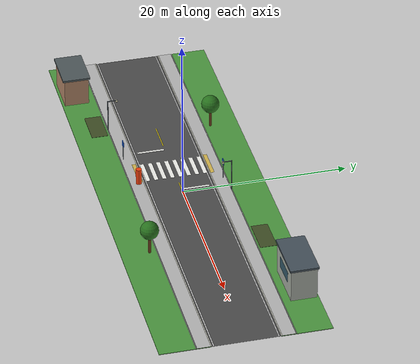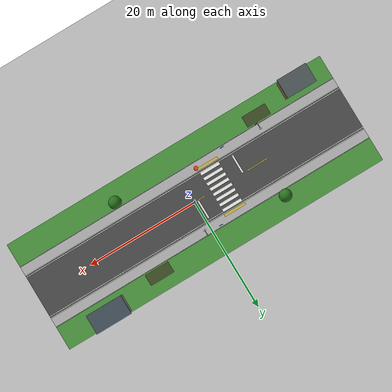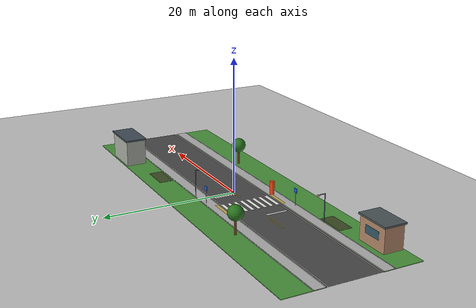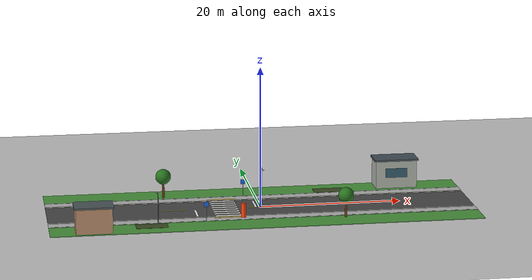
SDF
<?xml version="1.0" ?>
<sdf version="1.6">
  <world name="safe_drive_minimal_road">
    <plugin name="safe_drive_ground_truth" filename="libgazebo_ros_state.so">
      <ros>
        <namespace>/safe_drive/gazebo</namespace>
      </ros>
      <update_rate>20.0</update_rate>
    </plugin>
    <physics name="ode" type="ode">
      <max_step_size>0.001</max_step_size>
      <real_time_factor>1.0</real_time_factor>
      <real_time_update_rate>1000</real_time_update_rate>
    </physics>

    <gravity>0 0 -9.81</gravity>
    <magnetic_field>6e-6 2.3e-5 -4.2e-5</magnetic_field>
    <atmosphere type="adiabatic"/>

    <!-- Catch vehicles that leave the finite test road while a controller is
         being developed. The road surface remains the active driving plane. -->
    <include>
      <uri>model://ground_plane</uri>
      <pose>0 0 -0.1 0 0 0</pose>
    </include>

    <scene>
      <ambient>0.45 0.45 0.45 1</ambient>
      <background>0.70 0.85 1.0 1</background>
      <shadows>true</shadows>
    </scene>

    <gui>
      <camera name="user_camera">
        <track_visual>
          <name>safe_drive_ego</name>
          <static>true</static>
          <use_model_frame>true</use_model_frame>
          <xyz>-7 0 4</xyz>
        </track_visual>
      </camera>
    </gui>

    <light name="sun" type="directional">
      <cast_shadows>true</cast_shadows>
      <pose>0 0 10 0 0 0</pose>
      <diffuse>0.8 0.8 0.8 1</diffuse>
      <specular>0.2 0.2 0.2 1</specular>
      <attenuation>
        <range>1000</range>
        <constant>0.9</constant>
        <linear>0.01</linear>
        <quadratic>0.001</quadratic>
      </attenuation>
      <direction>-0.5 0.1 -0.9</direction>
    </light>

    <model name="road">
      <static>true</static>
      <link name="road_link">
        <collision name="collision">
          <pose>0 0 -0.05 0 0 0</pose>
          <geometry><box><size>60 8 0.1</size></box></geometry>
          <surface>
            <friction><ode><mu>1.0</mu><mu2>1.0</mu2></ode></friction>
          </surface>
        </collision>
        <visual name="asphalt">
          <pose>0 0 -0.045 0 0 0</pose>
          <geometry><box><size>60 8 0.01</size></box></geometry>
          <material>
            <script>
              <uri>file://safe_drive_road/materials/scripts</uri>
              <uri>file://safe_drive_road/materials/textures</uri>
              <name>SafeDrive/Asphalt</name>
            </script>
          </material>
        </visual>
        <visual name="center_line_a">
          <pose>-12 0 -0.037 0 0 0</pose>
          <geometry><box><size>4 0.12 0.01</size></box></geometry>
          <material><ambient>0.95 0.85 0.10 1</ambient><diffuse>0.95 0.85 0.10 1</diffuse></material>
        </visual>
        <visual name="center_line_b">
          <pose>0 0 -0.037 0 0 0</pose>
          <geometry><box><size>4 0.12 0.01</size></box></geometry>
          <material><ambient>0.95 0.85 0.10 1</ambient><diffuse>0.95 0.85 0.10 1</diffuse></material>
        </visual>
        <visual name="center_line_c">
          <pose>12 0 -0.037 0 0 0</pose>
          <geometry><box><size>4 0.12 0.01</size></box></geometry>
          <material><ambient>0.95 0.85 0.10 1</ambient><diffuse>0.95 0.85 0.10 1</diffuse></material>
        </visual>
        <visual name="left_edge_line">
          <pose>0 3.75 -0.037 0 0 0</pose>
          <geometry><box><size>60 0.12 0.01</size></box></geometry>
          <material><ambient>0.95 0.95 0.95 1</ambient><diffuse>0.95 0.95 0.95 1</diffuse></material>
        </visual>
        <visual name="right_edge_line">
          <pose>0 -3.75 -0.037 0 0 0</pose>
          <geometry><box><size>60 0.12 0.01</size></box></geometry>
          <material><ambient>0.95 0.95 0.95 1</ambient><diffuse>0.95 0.95 0.95 1</diffuse></material>
        </visual>
        <!-- Eight white bars run parallel to vehicle travel (+x), repeated
             along the pedestrian's +y crossing path. Paint is visual-only. -->
        <visual name="crosswalk_bar_1"><pose>-5 -3.45 -0.030 0 0 0</pose><geometry><box><size>3.6 0.50 0.012</size></box></geometry><material><ambient>0.96 0.96 0.94 1</ambient><diffuse>0.96 0.96 0.94 1</diffuse></material></visual>
        <visual name="crosswalk_bar_2"><pose>-5 -2.45 -0.030 0 0 0</pose><geometry><box><size>3.6 0.50 0.012</size></box></geometry><material><ambient>0.96 0.96 0.94 1</ambient><diffuse>0.96 0.96 0.94 1</diffuse></material></visual>
        <visual name="crosswalk_bar_3"><pose>-5 -1.45 -0.030 0 0 0</pose><geometry><box><size>3.6 0.50 0.012</size></box></geometry><material><ambient>0.96 0.96 0.94 1</ambient><diffuse>0.96 0.96 0.94 1</diffuse></material></visual>
        <visual name="crosswalk_bar_4"><pose>-5 -0.45 -0.030 0 0 0</pose><geometry><box><size>3.6 0.50 0.012</size></box></geometry><material><ambient>0.96 0.96 0.94 1</ambient><diffuse>0.96 0.96 0.94 1</diffuse></material></visual>
        <visual name="crosswalk_bar_5"><pose>-5 0.55 -0.030 0 0 0</pose><geometry><box><size>3.6 0.50 0.012</size></box></geometry><material><ambient>0.96 0.96 0.94 1</ambient><diffuse>0.96 0.96 0.94 1</diffuse></material></visual>
        <visual name="crosswalk_bar_6"><pose>-5 1.55 -0.030 0 0 0</pose><geometry><box><size>3.6 0.50 0.012</size></box></geometry><material><ambient>0.96 0.96 0.94 1</ambient><diffuse>0.96 0.96 0.94 1</diffuse></material></visual>
        <visual name="crosswalk_bar_7"><pose>-5 2.55 -0.030 0 0 0</pose><geometry><box><size>3.6 0.50 0.012</size></box></geometry><material><ambient>0.96 0.96 0.94 1</ambient><diffuse>0.96 0.96 0.94 1</diffuse></material></visual>
        <visual name="crosswalk_bar_8"><pose>-5 3.55 -0.030 0 0 0</pose><geometry><box><size>3.6 0.50 0.012</size></box></geometry><material><ambient>0.96 0.96 0.94 1</ambient><diffuse>0.96 0.96 0.94 1</diffuse></material></visual>
        <visual name="approach_stop_line"><pose>-9.25 -1.75 -0.029 0 0 0</pose><geometry><box><size>0.30 3.30 0.012</size></box></geometry><material><ambient>0.96 0.96 0.94 1</ambient><diffuse>0.96 0.96 0.94 1</diffuse></material></visual>
        <visual name="opposite_stop_line"><pose>-0.6 1.75 -0.029 0 0 0</pose><geometry><box><size>0.30 3.30 0.012</size></box></geometry><material><ambient>0.96 0.96 0.94 1</ambient><diffuse>0.96 0.96 0.94 1</diffuse></material></visual>
      </link>
    </model>
    <!-- Static roadside sensor target outside the drivable corridor. -->
    <model name="sensor_target_bollard">
      <static>true</static>
      <pose>-3 -4.65 0 0 0 0</pose>
      <link name="bollard_link">
        <collision name="bollard_collision">
          <pose>0 0 1.0 0 0 0</pose>
          <geometry><cylinder><radius>0.35</radius><length>2.0</length></cylinder></geometry>
        </collision>
        <visual name="bollard_visual">
          <pose>0 0 1.0 0 0 0</pose>
          <geometry><cylinder><radius>0.35</radius><length>2.0</length></cylinder></geometry>
          <material><ambient>0.95 0.25 0.05 1</ambient><diffuse>0.95 0.25 0.05 1</diffuse></material>
        </visual>
      </link>
    </model>
    <model name="roadside">
      <static>true</static>
      <link name="streetscape">
        <visual name="north_grass">
          <pose>0 7.0 -0.06 0 0 0</pose>
          <geometry><box><size>60 6 0.08</size></box></geometry>
          <material><script><uri>file://safe_drive_road/materials/scripts</uri><uri>file://safe_drive_road/materials/textures</uri><name>SafeDrive/Grass</name></script></material>
        </visual>
        <visual name="south_grass">
          <pose>0 -7.0 -0.06 0 0 0</pose>
          <geometry><box><size>60 6 0.08</size></box></geometry>
          <material><script><uri>file://safe_drive_road/materials/scripts</uri><uri>file://safe_drive_road/materials/textures</uri><name>SafeDrive/Grass</name></script></material>
        </visual>
        <visual name="north_sidewalk">
          <pose>0 4.9 -0.015 0 0 0</pose>
          <geometry><box><size>60 1.8 0.06</size></box></geometry>
          <material><script><uri>file://safe_drive_road/materials/scripts</uri><uri>file://safe_drive_road/materials/textures</uri><name>SafeDrive/Concrete</name></script></material>
        </visual>
        <visual name="south_sidewalk">
          <pose>0 -4.9 -0.015 0 0 0</pose>
          <geometry><box><size>60 1.8 0.06</size></box></geometry>
          <material><script><uri>file://safe_drive_road/materials/scripts</uri><uri>file://safe_drive_road/materials/textures</uri><name>SafeDrive/Concrete</name></script></material>
        </visual>
        <visual name="north_curb">
          <pose>0 4.04 0.0 0 0 0</pose>
          <geometry><box><size>60 0.12 0.08</size></box></geometry>
          <material><ambient>0.75 0.75 0.70 1</ambient><diffuse>0.80 0.80 0.75 1</diffuse></material>
        </visual>
        <visual name="south_curb">
          <pose>0 -4.04 0.0 0 0 0</pose>
          <geometry><box><size>60 0.12 0.08</size></box></geometry>
          <material><ambient>0.75 0.75 0.70 1</ambient><diffuse>0.80 0.80 0.75 1</diffuse></material>
        </visual>
        <!-- Visual-only paving and roadside props keep the tested road contact
             and the pedestrian crossing geometry unchanged. -->
        <visual name="north_sidewalk_band">
          <pose>0 5.70 0.018 0 0 0</pose>
          <geometry><box><size>60 0.055 0.004</size></box></geometry>
          <material><ambient>0.38 0.40 0.39 1</ambient><diffuse>0.42 0.44 0.42 1</diffuse></material>
        </visual>
        <visual name="south_sidewalk_band">
          <pose>0 -5.70 0.018 0 0 0</pose>
          <geometry><box><size>60 0.055 0.004</size></box></geometry>
          <material><ambient>0.38 0.40 0.39 1</ambient><diffuse>0.42 0.44 0.42 1</diffuse></material>
        </visual>
        <visual name="north_crossing_entry">
          <pose>-5 4.38 0.019 0 0 0</pose>
          <geometry><box><size>3.90 0.46 0.006</size></box></geometry>
          <material><ambient>0.73 0.63 0.27 1</ambient><diffuse>0.84 0.72 0.31 1</diffuse></material>
        </visual>
        <visual name="south_crossing_entry">
          <pose>-5 -4.38 0.019 0 0 0</pose>
          <geometry><box><size>3.90 0.46 0.006</size></box></geometry>
          <material><ambient>0.73 0.63 0.27 1</ambient><diffuse>0.84 0.72 0.31 1</diffuse></material>
        </visual>
        <visual name="north_planting_bed">
          <pose>11 7.0 -0.01 0 0 0</pose>
          <geometry><box><size>4.4 2.0 0.035</size></box></geometry>
          <material><ambient>0.18 0.24 0.12 1</ambient><diffuse>0.25 0.31 0.15 1</diffuse></material>
        </visual>
        <visual name="south_planting_bed">
          <pose>-16 -7.0 -0.01 0 0 0</pose>
          <geometry><box><size>4.4 2.0 0.035</size></box></geometry>
          <material><ambient>0.18 0.24 0.12 1</ambient><diffuse>0.25 0.31 0.15 1</diffuse></material>
        </visual>
        <visual name="north_lamp_post">
          <pose>1 5.70 2.10 0 0 0</pose>
          <geometry><cylinder><radius>0.065</radius><length>4.20</length></cylinder></geometry>
          <material><ambient>0.24 0.28 0.31 1</ambient><diffuse>0.36 0.40 0.43 1</diffuse></material>
        </visual>
        <visual name="north_lamp_arm">
          <pose>1 5.15 4.12 0 0 0</pose>
          <geometry><box><size>0.09 1.18 0.08</size></box></geometry>
          <material><ambient>0.24 0.28 0.31 1</ambient><diffuse>0.36 0.40 0.43 1</diffuse></material>
        </visual>
        <visual name="north_lamp_head">
          <pose>1 4.62 4.06 0 0 0</pose>
          <geometry><box><size>0.46 0.24 0.10</size></box></geometry>
          <material><ambient>0.83 0.81 0.64 1</ambient><diffuse>0.88 0.86 0.70 1</diffuse></material>
        </visual>
        <visual name="south_lamp_post">
          <pose>-15 -5.70 2.10 0 0 0</pose>
          <geometry><cylinder><radius>0.065</radius><length>4.20</length></cylinder></geometry>
          <material><ambient>0.24 0.28 0.31 1</ambient><diffuse>0.36 0.40 0.43 1</diffuse></material>
        </visual>
        <visual name="south_lamp_arm">
          <pose>-15 -5.15 4.12 0 0 0</pose>
          <geometry><box><size>0.09 1.18 0.08</size></box></geometry>
          <material><ambient>0.24 0.28 0.31 1</ambient><diffuse>0.36 0.40 0.43 1</diffuse></material>
        </visual>
        <visual name="south_lamp_head">
          <pose>-15 -4.62 4.06 0 0 0</pose>
          <geometry><box><size>0.46 0.24 0.10</size></box></geometry>
          <material><ambient>0.83 0.81 0.64 1</ambient><diffuse>0.88 0.86 0.70 1</diffuse></material>
        </visual>
        <visual name="north_pavilion_body">
          <pose>21 8.25 2.0 0 0 0</pose>
          <geometry><box><size>6.0 3.1 4.0</size></box></geometry>
          <material><ambient>0.50 0.52 0.49 1</ambient><diffuse>0.66 0.68 0.64 1</diffuse></material>
        </visual>
        <visual name="north_pavilion_roof">
          <pose>21 8.25 4.12 0 0 0</pose>
          <geometry><box><size>6.4 3.4 0.25</size></box></geometry>
          <material><ambient>0.19 0.24 0.29 1</ambient><diffuse>0.27 0.32 0.36 1</diffuse></material>
        </visual>
        <visual name="north_pavilion_window">
          <pose>21 6.69 2.25 0 0 0</pose>
          <geometry><box><size>3.2 0.025 1.35</size></box></geometry>
          <material><ambient>0.11 0.23 0.29 1</ambient><diffuse>0.20 0.35 0.41 1</diffuse></material>
        </visual>
        <visual name="south_pavilion_body">
          <pose>-24 -8.20 1.75 0 0 0</pose>
          <geometry><box><size>5.0 3.0 3.5</size></box></geometry>
          <material><ambient>0.57 0.42 0.32 1</ambient><diffuse>0.70 0.53 0.41 1</diffuse></material>
        </visual>
        <visual name="south_pavilion_roof">
          <pose>-24 -8.20 3.62 0 0 0</pose>
          <geometry><box><size>5.4 3.4 0.25</size></box></geometry>
          <material><ambient>0.22 0.26 0.28 1</ambient><diffuse>0.31 0.35 0.36 1</diffuse></material>
        </visual>
        <visual name="south_pavilion_window">
          <pose>-24 -6.69 2.02 0 0 0</pose>
          <geometry><box><size>2.7 0.025 1.15</size></box></geometry>
          <material><ambient>0.11 0.23 0.29 1</ambient><diffuse>0.20 0.35 0.41 1</diffuse></material>
        </visual>
        <visual name="south_crossing_sign_post">
          <pose>-8.3 -5.35 1.05 0 0 0</pose>
          <geometry><cylinder><radius>0.045</radius><length>2.1</length></cylinder></geometry>
          <material><ambient>0.32 0.35 0.37 1</ambient><diffuse>0.55 0.58 0.60 1</diffuse></material>
        </visual>
        <visual name="south_crossing_sign">
          <pose>-8.3 -5.35 2.25 0 0 0</pose>
          <geometry><box><size>0.65 0.08 0.65</size></box></geometry>
          <material><ambient>0.08 0.25 0.67 1</ambient><diffuse>0.10 0.37 0.85 1</diffuse></material>
        </visual>
        <visual name="north_crossing_sign_post">
          <pose>-1.7 5.35 1.05 0 0 0</pose>
          <geometry><cylinder><radius>0.045</radius><length>2.1</length></cylinder></geometry>
          <material><ambient>0.32 0.35 0.37 1</ambient><diffuse>0.55 0.58 0.60 1</diffuse></material>
        </visual>
        <visual name="north_crossing_sign">
          <pose>-1.7 5.35 2.25 0 0 0</pose>
          <geometry><box><size>0.65 0.08 0.65</size></box></geometry>
          <material><ambient>0.08 0.25 0.67 1</ambient><diffuse>0.10 0.37 0.85 1</diffuse></material>
        </visual>
        <visual name="south_tree_trunk">
          <pose>11 -6.6 1.3 0 0 0</pose>
          <geometry><cylinder><radius>0.16</radius><length>2.6</length></cylinder></geometry>
          <material><ambient>0.27 0.15 0.07 1</ambient><diffuse>0.39 0.23 0.10 1</diffuse></material>
        </visual>
        <visual name="south_tree_crown">
          <pose>11 -6.6 3.1 0 0 0</pose>
          <geometry><sphere><radius>1.1</radius></sphere></geometry>
          <material><ambient>0.09 0.27 0.07 1</ambient><diffuse>0.16 0.45 0.12 1</diffuse></material>
        </visual>
        <visual name="north_tree_trunk">
          <pose>-13 6.6 1.3 0 0 0</pose>
          <geometry><cylinder><radius>0.16</radius><length>2.6</length></cylinder></geometry>
          <material><ambient>0.27 0.15 0.07 1</ambient><diffuse>0.39 0.23 0.10 1</diffuse></material>
        </visual>
        <visual name="north_tree_crown">
          <pose>-13 6.6 3.1 0 0 0</pose>
          <geometry><sphere><radius>1.1</radius></sphere></geometry>
          <material><ambient>0.09 0.27 0.07 1</ambient><diffuse>0.16 0.45 0.12 1</diffuse></material>
        </visual>
      </link>
    </model>
  </world>
</sdf>
